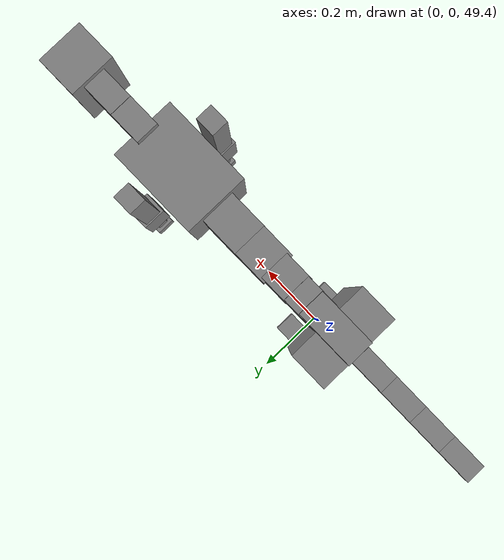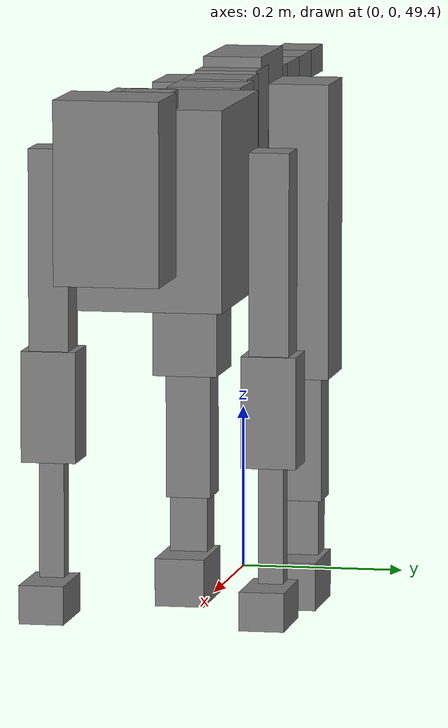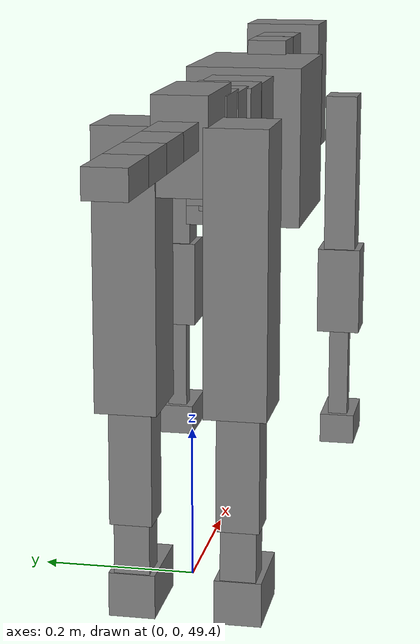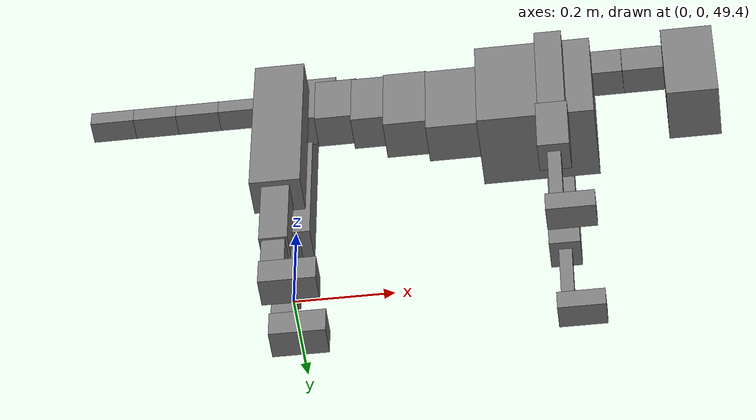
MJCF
<mujoco model="dog">

    <default>
        <joint armature="0.02" stiffness="1" damping="0.2" limited="true"/>
        <geom condim="3" friction="1 0.05 0.05" margin="0.01"/>
        <motor ctrllimited="true" ctrlrange="-1.0 1.0" forcelimited="true" gear="50"/>
    </default>

    <compiler inertiafromgeom="true" angle="radian"/>

    <option timestep="0.016" iterations="50" tolerance="1e-10" solver="Newton" jacobian="dense" cone="pyramidal"/>

    <size nconmax="20000" njmax="60000" nstack="5000000"/>
    <visual>
        <map force="0.1" zfar="30"/>
        <rgba haze="0.15 0.25 0.35 1"/>
        <quality shadowsize="2048"/>
        <global offwidth="800" offheight="800"/>
    </visual>

    <asset>
        <texture type="skybox" builtin="gradient" rgb1="0.3 0.5 0.7" rgb2="0 0 0" width="512" height="512"/>
        <texture name="texplane" type="2d" builtin="checker" rgb1=".2 .3 .4" rgb2=".1 0.15 0.2" width="512" height="512"
                 mark="cross" markrgb=".8 .8 .8"/>
        <texture name="texgeom" type="cube" builtin="flat" mark="cross" width="127" height="1278" rgb1="0.8 0.6 0.4"
                 rgb2="0.8 0.6 0.4" markrgb="1 1 1" random="0.01"/>

        <material name="matplane" reflectance="0.3" texture="texplane" texrepeat="1 1" texuniform="true"/>
        <material name="matgeom" texture="texgeom" texuniform="true" rgba="0.8 0.6 .4 1"/>
    </asset>

    <worldbody>
        <geom name="floor" pos="0 0 0" size="0 0 .25" type="plane" material="matplane" condim="3"/>

        <light directional="false" diffuse=".2 .2 .2" specular="0 0 0" pos="0 0 5" dir="0 0 -1" castshadow="false"/>
        <light mode="targetbodycom" target="torso" directional="false" diffuse=".8 .8 .8" specular="0.3 0.3 0.3"
               pos="0 0 4.0" dir="0 0 -1"/>

        <body name="root" pos="0 0 50">
            <freejoint name="root_1"/>
            <geom type="box" pos="0 0 -0.02" size="0.0774  0.0358  0.063" density="2030"/>

            <body name="spine1" pos="0.054 0 0">
                <joint name="spine1_y" axis="0 1 0" range="0 0.7" limited="true"/>
                <geom type="box" pos="0.02375 0 -0.03" size="0.04375  0.0375  0.05985" density="2030"/>

                <body name="spine2" pos="0.0612 0 0">
                    <joint name="spine2_y" axis="0 1 0" range="-0.15 0.15" limited="true"/>
                    <geom type="box" pos="0.03555  0  -0.04" size="0.04055  0.039  0.06615" density="2030"/>

                    <body name="spine3" pos="0.0730 0 0">
                        <joint name="spine3_y" axis="0 1 0" range="-0.15 0.15" limited="true"/>
                        <geom type="box" pos="0.03555  0  -0.057" size="0.04555  0.0445  0.081" density="2030"/>

                        <body name="spine4" pos="0.0780 0 0">
                            <joint name="spine4_y" axis="0 1 0" range="-0.15 0.15" limited="true"/>
                            <geom type="box" pos="0.05265  0  -0.07" size="0.05265  0.045  0.09135" density="2030"/>

                            <body name="torso" pos="0.1082 0 0">
                                <joint name="torso_y" axis="0 1 0" range="-0.15 0.15" limited="true"/>
                                <geom type="box" pos="0.11925  0  -0.085" size="0.11925  0.085  0.11745"
                                      density="2030"/>

                                <body name="neck1" pos="0.2160  0   0.0180">
                                    <joint name="neck1_y" axis="0 1 0" range="-1.2  -1" limited="true"/>
                                    <geom type="box" pos="0.0423  0  0" size="0.0423  0.03  0.036" density="2325"/>

                                    <body name="neck2" pos="0.0853  0  0">
                                        <joint name="neck2_y" axis="0 1 0" range="0.1  0" limited="true"/>
                                        <geom type="box" pos="0.0423  0  0" size="0.0423  0.03  0.036" density="2325"/>

                                        <body name="head" pos="0.0853  0  0">
                                            <joint name="head_y" axis="0 1 0" range="-0.3  -0.2" limited="true"/>
                                            <geom type="box" pos="0.0531  0  -0.055" size="0.0531  0.06  0.1044"
                                                  density="4030"/>

                                        </body>
                                    </body>
                                </body>

                                <body name="front_shoulder" pos="0.156  0   -0.0480">
                                    <joint name="front_shoulder_y" axis="0 1 0" range="-1 1.5" limited="true"/>
                                    <geom type="box" pos="0 0.13 -0.1053" size="0.0277  0.0236  0.1319" density="1158"/>
                                    <geom type="box" pos="0 -0.13 -0.1053" size="0.0277  0.0236  0.1319"
                                          density="1158"/>

                                    <body name="front_elbow" pos="0  0  -0.2105">
                                        <joint name="front_elbow_y" axis="0 1 0" range="-2 0" limited="true"/>
                                        <geom type="box" pos="0 0.13 -0.0654" size="0.0317  0.0324  0.0654"
                                              density="1081"/>
                                        <geom type="box" pos="0 -0.13 -0.0654" size="0.0317  0.0324  0.0654"
                                              density="1081"/>

                                        <body name="front_wrist" pos="0  0  -0.1308">
                                            <joint name="front_wrist_y" axis="0 1 0" range="-0.2 0" limited="true"/>
                                            <geom type="box" pos="0 0.13 -0.0764" size="0.0133  0.0148  0.0895"
                                                  density="1664"/>
                                            <geom type="box" pos="0 -0.13 -0.0764" size="0.0133  0.0148  0.0895"
                                                  density="1664"/>

                                            <body name="front_finger_end" pos="0  0  -0.1528">
                                                <joint name="front_finger_y" axis="0 1 0" range="-0.4 1"
                                                       limited="true"/>
                                                <geom type="box" pos="0.0264  0.13  -0.0078"
                                                      size="0.0485  0.0264  0.0228" density="1515"/>
                                                <geom type="box" pos="0.0264  -0.13  -0.0078"
                                                      size="0.0485  0.0264  0.0228" density="1515"/>

                                            </body>

                                        </body>
                                    </body>
                                </body>

                            </body>
                        </body>
                    </body>
                </body>
            </body>

            <body name="back_hip" pos="-0.03 0 -0.018">
                <joint name="back_hip_y" axis="0 1 0" range="-1.5 0.3" limited="true"/>
                <geom type="box" pos="0 0.07 -0.1603" size="0.0513  0.0403  0.1831" density="1154"/>
                <geom type="box" pos="0 -0.07 -0.1603" size="0.0513  0.0403  0.1831" density="1154"/>

                <body name="back_knee" pos="0  0  -0.3205">
                    <joint name="back_knee_y" axis="0 1 0" range="0 2.8" limited="true"/>
                    <geom type="box" pos="0 0.07 -0.0815" size="0.0284  0.0280  0.0970" density="1227"/>
                    <geom type="box" pos="0 -0.07 -0.0815" size="0.0284  0.0280  0.0970" density="1227"/>

                    <body name="back_ankle" pos="0  0  -0.1629">
                        <joint name="back_ankle_y" axis="0 1 0" range="-2.2 0" limited="true"/>
                        <geom type="box" pos="0 0.07 -0.0493" size="0.0235  0.0235  0.0606" density="1284"/>
                        <geom type="box" pos="0 -0.07 -0.0493" size="0.0235  0.0235  0.0606" density="1284"/>

                        <body name="back_toe_end" pos="0  0  -0.0987">
                            <joint name="back_toe_y" axis="0 1 0" range="-0.4 1" limited="true"/>
                            <geom type="box" pos="0.0309  0.07  -0.0147" size="0.0566  0.0309  0.0297" density="1515"/>
                            <geom type="box" pos="0.0309  -0.07  -0.0147" size="0.0566  0.0309  0.0297" density="1515"/>

                        </body>
                    </body>
                </body>
            </body>

            <body name="tail1" pos="-0.074 0 -0.006">
                <joint name="tail1_y" axis="0 1 0" range="-0.2 0.2" limited="true"/>
                <geom type="box" pos="-0.0536  0  0" size="0.045  0.025  0.0175" density="1587"/>

                <body name="tail2" pos="-0.09 0 0">
                    <joint name="tail2_y" axis="0 1 0" range="-0.2 0.2" limited="true"/>
                    <geom type="box" pos="-0.0536  0  0" size="0.045  0.025  0.0175" density="1587"/>

                    <body name="tail3" pos="-0.09 0 0">
                        <joint name="tail3_y" axis="0 1 0" range="-0.2 0.2" limited="true"/>
                        <geom type="box" pos="-0.0536  0  0" size="0.045  0.025  0.0175" density="1587"/>

                        <body name="tail4" pos="-0.09 0 0">
                            <joint name="tail4_y" axis="0 1 0" range="-0.2 0.2" limited="true"/>
                            <geom type="box" pos="-0.0536  0  0" size="0.045  0.025  0.0175" density="1587"/>

                        </body>
                    </body>
                </body>
            </body>
        </body>
    </worldbody>

    <actuator>
        <motor joint="spine1_y" forcerange="-150 150     "/>
        <motor joint="spine2_y" forcerange="-150 150     "/>
        <motor joint="spine3_y" forcerange="-150 150     "/>
        <motor joint="spine4_y" forcerange="-150 150     "/>
        <motor joint="torso_y" forcerange="-150 150     "/>
        <motor joint="neck1_y" forcerange="-100 100       "/>
        <motor joint="neck2_y" forcerange="-100 100       "/>
        <motor joint="head_y" forcerange="-150 150       "/>
        <motor joint="front_shoulder_y" forcerange="-114.90 142.68"/>
        <motor joint="front_elbow_y" forcerange="-146.71 188.69"/>
        <motor joint="front_wrist_y" forcerange="-57.49 60.96"/>
        <motor joint="front_finger_y" forcerange="-21.86 79.16"/>
        <motor joint="back_hip_y" forcerange="-370.15 366.74"/>
        <motor joint="back_knee_y" forcerange="-227.99 379.77"/>
        <motor joint="back_angle_y" forcerange="-220.01 56.62"/>
        <motor joint="back_toe_y" forcerange="-84.15 82.84"/>
        <motor joint="tail1_y" forcerange="-50 50     "/>
        <motor joint="tail2_y" forcerange="-50 50     "/>
        <motor joint="tail3_y" forcerange="-50 50     "/>
        <motor joint="tail4_y" forcerange="-50 50     "/>
    </actuator>
</mujoco>
